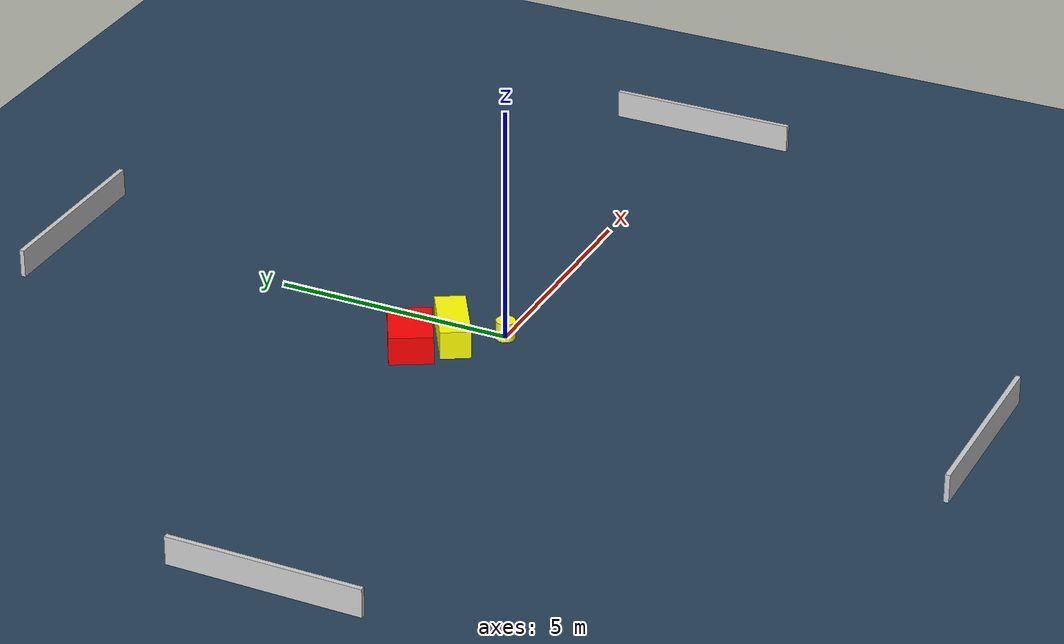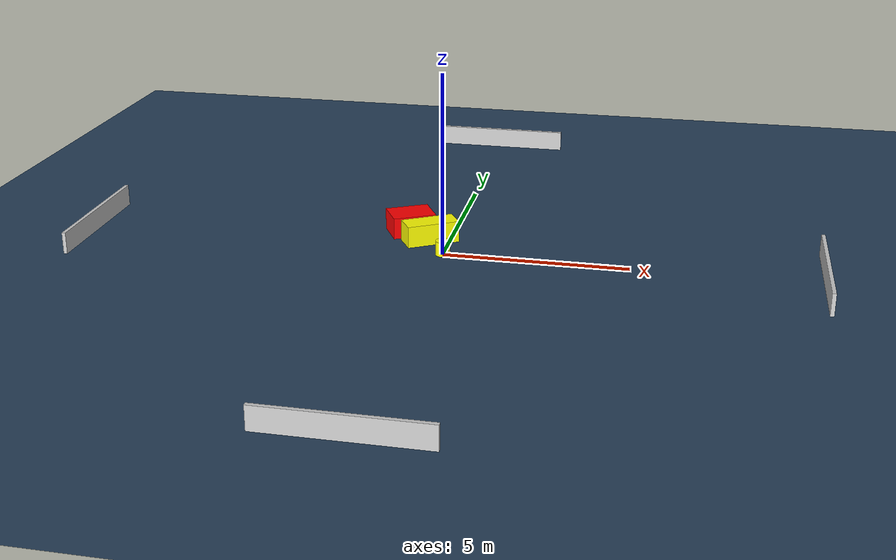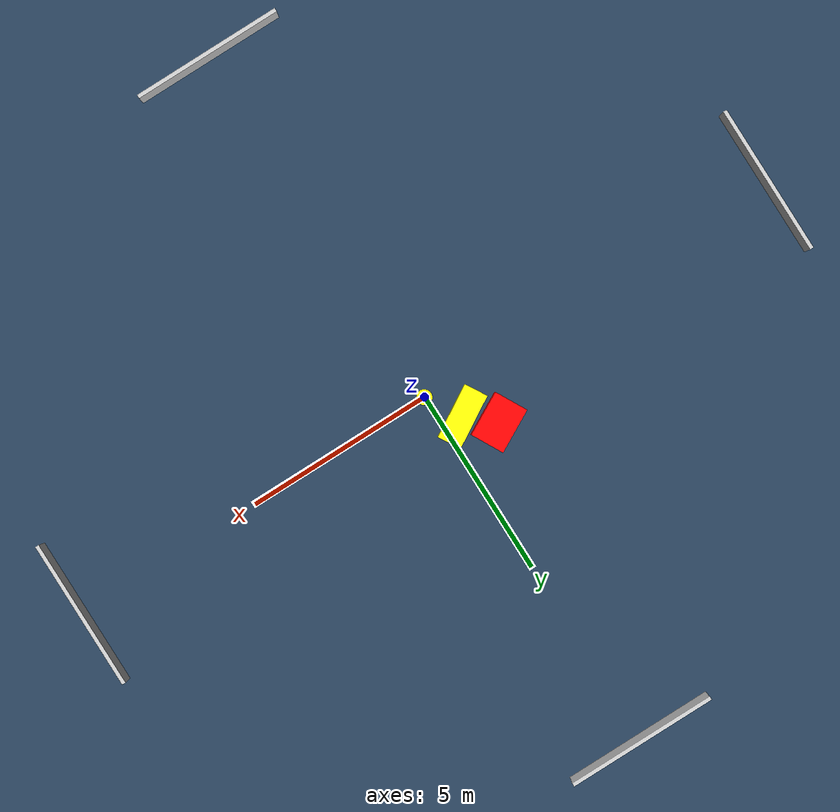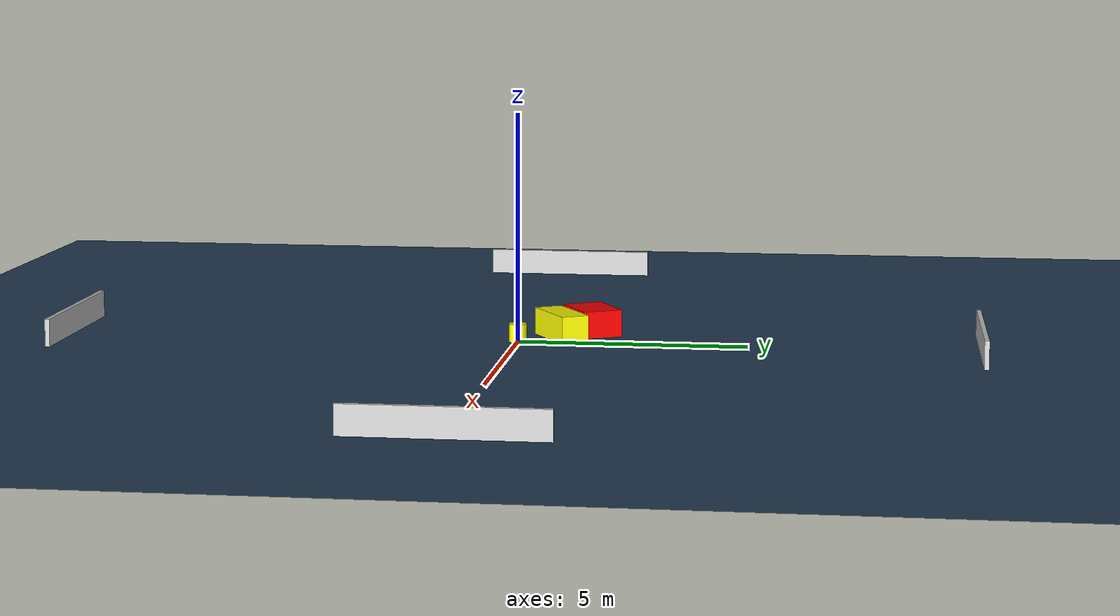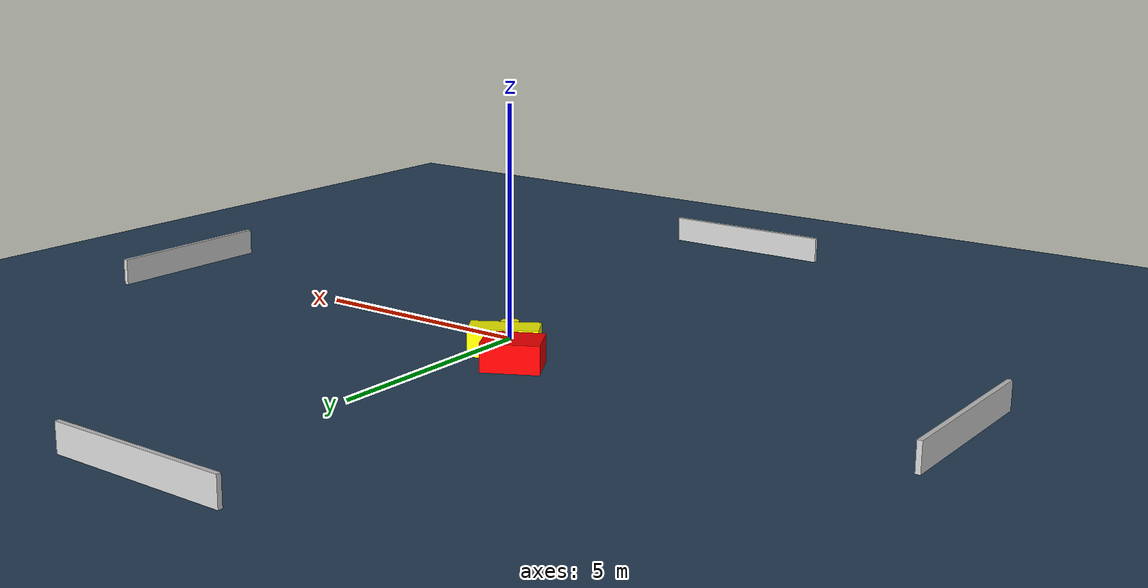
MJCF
<?xml version="1.0" ?>
<mujoco model="generated_environment">
  <option timestep="0.01" integrator="RK4" cone="elliptic"/>
  <default>
    <geom density="1"/>
  </default>
  <asset>
    <texture builtin="gradient" height="3072" name="skybox" rgb1="0.3 0.5 0.7" rgb2="0 0 0" type="skybox" width="512"/>
    <texture builtin="checker" height="300" name="groundplane" rgb1="0.2 0.3 0.4" rgb2="0.1 0.2 0.3" type="2d" width="300"/>
    <material name="groundplane" reflectance="0.2" texrepeat="5 5" texture="groundplane"/>
  </asset>
  <worldbody>
    <light dir="0 0 -1" directional="true" pos="0 0 1.5"/>
    <geom condim="3" friction="0.5 0.005 0.001" material="groundplane" name="floor" pos="0 0 0" size="0 0 0.05" type="plane"/>
    <body name="walls">
      <geom name="wall_1" condim="4" pos="-10.0 0.0 0.3" rgba="0.800000011920929 0.800000011920929 0.800000011920929 1.0" size="0.05 2.0 0.3" type="box"/>
      <geom name="wall_2" condim="4" pos="10.0 0.0 0.3" rgba="0.800000011920929 0.800000011920929 0.800000011920929 1.0" size="0.05 2.0 0.3" type="box"/>
      <geom name="wall_3" condim="4" pos="0.0 -10.0 0.3" rgba="0.800000011920929 0.800000011920929 0.800000011920929 1.0" size="2.0 0.05 0.3" type="box"/>
      <geom name="wall_4" condim="4" pos="0.0 10.0 0.3" rgba="0.800000011920929 0.800000011920929 0.800000011920929 1.0" size="2.0 0.05 0.3" type="box"/>
    </body>
    <body name="robot">
      <joint name="joint_x" type="slide" pos="0 0 0" axis="1 0 0"/>
      <joint name="joint_y" type="slide" pos="0 0 0" axis="0 1 0"/>
      <geom name="robot" type="cylinder" pos="0.0 0.0 0.2" size="0.2 0.2 0.0" mass="5.0" friction="1.0 0.005 0.0001" condim="4" rgba="1.0 1.0 0.0 1.0"/>
    </body>
    <body name="obstacle_1_movable">
      <geom name="obstacle_1_movable" condim="4" pos="-0.5442748178688549 0.9017784457968824 0.3" euler="0 0 300.7213528710572" friction="0.0 0.005 0.001" rgba="1.0 1.0 0.0 1.0" size="0.3154365779970736 0.7328556268686697 0.3" type="box" mass="0.1"/>
      <joint type="free"/>
    </body>
    <body name="obstacle_2_static">
      <geom name="obstacle_2_static" condim="4" pos="-1.2260347986658602 1.5046235833229618 0.3" euler="0 0 118.268421606112" friction="0.0 0.005 0.001" rgba="1.0 0.0 0.0 1.0" size="0.4496199008590846 0.6055709784820844 0.3" type="box"/>
    </body>
  </worldbody>
  <actuator>
    <motor name="actuator_x" joint="joint_x" gear="1" ctrlrange="-1 1"/>
    <motor name="actuator_y" joint="joint_y" gear="1" ctrlrange="-1 1"/>
  </actuator>
</mujoco>
